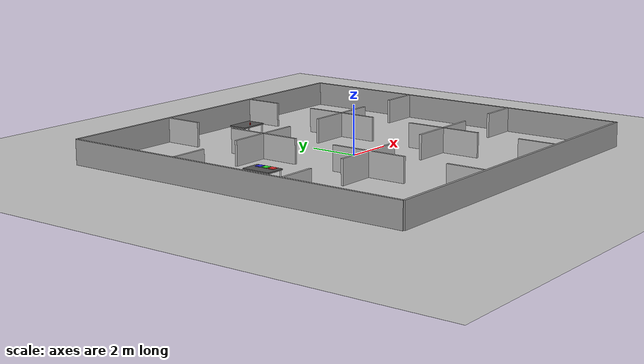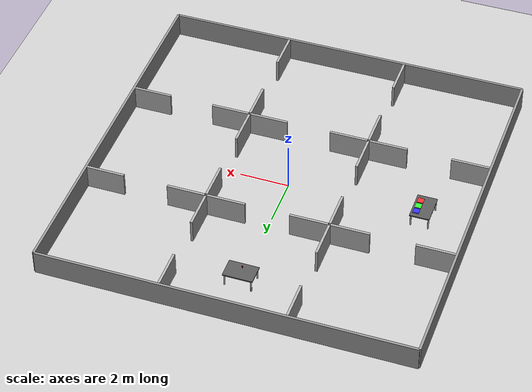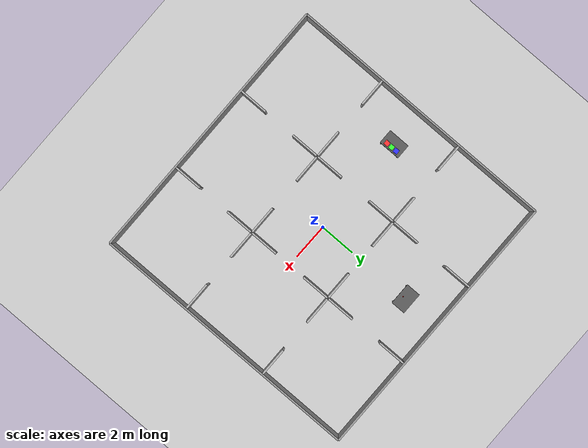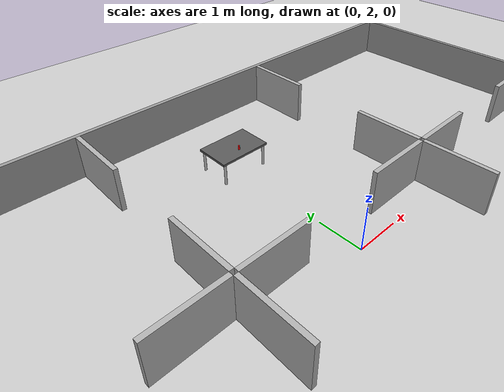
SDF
<sdf version='1.9'>
  <world name='empty_world'>
    <gravity>0 0 -9.8</gravity>
    <magnetic_field>6e-06 2.3e-05 -4.2e-05</magnetic_field>
    <atmosphere type='adiabatic'/>
    <physics type='ode'>
      <max_step_size>0.001</max_step_size>
      <real_time_factor>1</real_time_factor>
      <real_time_update_rate>1000</real_time_update_rate>
    </physics>
    <scene>
      <ambient>0.4 0.4 0.4 1</ambient>
      <background>0.7 0.7 0.7 1</background>
      <shadows>true</shadows>
    </scene>

    <model name='boundary_fence'>
      <static>true</static>
      <pose>0 0 0 0 0 0</pose>
      <link name='wall_north'>
        <pose>0 7.5 0.5 0 0 0</pose>
        <collision name='collision'><geometry><box><size>15.0 0.1 1.0</size></box></geometry></collision>
        <visual name='visual'>
          <geometry><box><size>15.0 0.1 1.0</size></box></geometry>
          <material>
            <ambient>0.5 0.5 0.5 1</ambient>
            <diffuse>0.6 0.6 0.6 1</diffuse>
            <specular>0.1 0.1 0.1 1</specular>
          </material>
        </visual>
      </link>
      <link name='wall_south'>
        <pose>0 -7.5 0.5 0 0 0</pose>
        <collision name='collision'><geometry><box><size>15.0 0.1 1.0</size></box></geometry></collision>
        <visual name='visual'>
          <geometry><box><size>15.0 0.1 1.0</size></box></geometry>
          <material>
            <ambient>0.5 0.5 0.5 1</ambient>
            <diffuse>0.6 0.6 0.6 1</diffuse>
            <specular>0.1 0.1 0.1 1</specular>
          </material>
        </visual>
      </link>
      <link name='wall_east'>
        <pose>7.5 0 0.5 0 0 0</pose>
        <collision name='collision'><geometry><box><size>0.1 15.0 1.0</size></box></geometry></collision>
        <visual name='visual'>
          <geometry><box><size>0.1 15.0 1.0</size></box></geometry>
          <material>
            <ambient>0.5 0.5 0.5 1</ambient>
            <diffuse>0.6 0.6 0.6 1</diffuse>
            <specular>0.1 0.1 0.1 1</specular>
          </material>
        </visual>
      </link>
      <link name='wall_west'>
        <pose>-7.5 0 0.5 0 0 0</pose>
        <collision name='collision'><geometry><box><size>0.1 15.0 1.0</size></box></geometry></collision>
        <visual name='visual'>
          <geometry><box><size>0.1 15.0 1.0</size></box></geometry>
          <material>
            <ambient>0.5 0.5 0.5 1</ambient>
            <diffuse>0.6 0.6 0.6 1</diffuse>
            <specular>0.1 0.1 0.1 1</specular>
          </material>
        </visual>
      </link>
    </model>

    <model name='internal_partitions'>
      <static>true</static>
      <pose>0 0 0 0 0 0</pose>
      <link name='partition_north'>
        <pose>0 2.5 0.5 0 0 0</pose>
        <collision name='col_nw_1'><pose>-6.675 0 0 0 0 0</pose><geometry><box><size>1.55 0.1 1.0</size></box></geometry></collision>
        <visual name='vis_nw_1'><pose>-6.675 0 0 0 0 0</pose><geometry><box><size>1.55 0.1 1.0</size></box></geometry><material><ambient>0.6 0.6 0.6 1</ambient><diffuse>0.7 0.7 0.7 1</diffuse></material></visual>
        <collision name='col_nw_2'><pose>-3.325 0 0 0 0 0</pose><geometry><box><size>1.55 0.1 1.0</size></box></geometry></collision>
        <visual name='vis_nw_2'><pose>-3.325 0 0 0 0 0</pose><geometry><box><size>1.55 0.1 1.0</size></box></geometry><material><ambient>0.6 0.6 0.6 1</ambient><diffuse>0.7 0.7 0.7 1</diffuse></material></visual>
        <collision name='col_nc_1'><pose>-1.675 0 0 0 0 0</pose><geometry><box><size>1.55 0.1 1.0</size></box></geometry></collision>
        <visual name='vis_nc_1'><pose>-1.675 0 0 0 0 0</pose><geometry><box><size>1.55 0.1 1.0</size></box></geometry><material><ambient>0.6 0.6 0.6 1</ambient><diffuse>0.7 0.7 0.7 1</diffuse></material></visual>
        <collision name='col_nc_2'><pose>1.675 0 0 0 0 0</pose><geometry><box><size>1.55 0.1 1.0</size></box></geometry></collision>
        <visual name='vis_nc_2'><pose>1.675 0 0 0 0 0</pose><geometry><box><size>1.55 0.1 1.0</size></box></geometry><material><ambient>0.6 0.6 0.6 1</ambient><diffuse>0.7 0.7 0.7 1</diffuse></material></visual>
        <collision name='col_ne_1'><pose>3.325 0 0 0 0 0</pose><geometry><box><size>1.55 0.1 1.0</size></box></geometry></collision>
        <visual name='vis_ne_1'><pose>3.325 0 0 0 0 0</pose><geometry><box><size>1.55 0.1 1.0</size></box></geometry><material><ambient>0.6 0.6 0.6 1</ambient><diffuse>0.7 0.7 0.7 1</diffuse></material></visual>
        <collision name='col_ne_2'><pose>6.675 0 0 0 0 0</pose><geometry><box><size>1.55 0.1 1.0</size></box></geometry></collision>
        <visual name='vis_ne_2'><pose>6.675 0 0 0 0 0</pose><geometry><box><size>1.55 0.1 1.0</size></box></geometry><material><ambient>0.6 0.6 0.6 1</ambient><diffuse>0.7 0.7 0.7 1</diffuse></material></visual>
      </link>
      <link name='partition_south'>
        <pose>0 -2.5 0.5 0 0 0</pose>
        <collision name='col_sw_1'><pose>-6.675 0 0 0 0 0</pose><geometry><box><size>1.55 0.1 1.0</size></box></geometry></collision>
        <visual name='vis_sw_1'><pose>-6.675 0 0 0 0 0</pose><geometry><box><size>1.55 0.1 1.0</size></box></geometry><material><ambient>0.6 0.6 0.6 1</ambient><diffuse>0.7 0.7 0.7 1</diffuse></material></visual>
        <collision name='col_sw_2'><pose>-3.325 0 0 0 0 0</pose><geometry><box><size>1.55 0.1 1.0</size></box></geometry></collision>
        <visual name='vis_sw_2'><pose>-3.325 0 0 0 0 0</pose><geometry><box><size>1.55 0.1 1.0</size></box></geometry><material><ambient>0.6 0.6 0.6 1</ambient><diffuse>0.7 0.7 0.7 1</diffuse></material></visual>
        <collision name='col_sc_1'><pose>-1.675 0 0 0 0 0</pose><geometry><box><size>1.55 0.1 1.0</size></box></geometry></collision>
        <visual name='vis_sc_1'><pose>-1.675 0 0 0 0 0</pose><geometry><box><size>1.55 0.1 1.0</size></box></geometry><material><ambient>0.6 0.6 0.6 1</ambient><diffuse>0.7 0.7 0.7 1</diffuse></material></visual>
        <collision name='col_sc_2'><pose>1.675 0 0 0 0 0</pose><geometry><box><size>1.55 0.1 1.0</size></box></geometry></collision>
        <visual name='vis_sc_2'><pose>1.675 0 0 0 0 0</pose><geometry><box><size>1.55 0.1 1.0</size></box></geometry><material><ambient>0.6 0.6 0.6 1</ambient><diffuse>0.7 0.7 0.7 1</diffuse></material></visual>
        <collision name='col_se_1'><pose>3.325 0 0 0 0 0</pose><geometry><box><size>1.55 0.1 1.0</size></box></geometry></collision>
        <visual name='vis_se_1'><pose>3.325 0 0 0 0 0</pose><geometry><box><size>1.55 0.1 1.0</size></box></geometry><material><ambient>0.6 0.6 0.6 1</ambient><diffuse>0.7 0.7 0.7 1</diffuse></material></visual>
        <collision name='col_se_2'><pose>6.675 0 0 0 0 0</pose><geometry><box><size>1.55 0.1 1.0</size></box></geometry></collision>
        <visual name='vis_se_2'><pose>6.675 0 0 0 0 0</pose><geometry><box><size>1.55 0.1 1.0</size></box></geometry><material><ambient>0.6 0.6 0.6 1</ambient><diffuse>0.7 0.7 0.7 1</diffuse></material></visual>
      </link>
      <link name='partition_west'>
        <pose>-2.5 0 0.5 0 0 0</pose>
        <collision name='col_wn_1'><pose>0 6.675 0 0 0 0</pose><geometry><box><size>0.1 1.55 1.0</size></box></geometry></collision>
        <visual name='vis_wn_1'><pose>0 6.675 0 0 0 0</pose><geometry><box><size>0.1 1.55 1.0</size></box></geometry><material><ambient>0.6 0.6 0.6 1</ambient><diffuse>0.7 0.7 0.7 1</diffuse></material></visual>
        <collision name='col_wn_2'><pose>0 3.325 0 0 0 0</pose><geometry><box><size>0.1 1.55 1.0</size></box></geometry></collision>
        <visual name='vis_wn_2'><pose>0 3.325 0 0 0 0</pose><geometry><box><size>0.1 1.55 1.0</size></box></geometry><material><ambient>0.6 0.6 0.6 1</ambient><diffuse>0.7 0.7 0.7 1</diffuse></material></visual>
        <collision name='col_wc_1'><pose>0 1.675 0 0 0 0</pose><geometry><box><size>0.1 1.55 1.0</size></box></geometry></collision>
        <visual name='vis_wc_1'><pose>0 1.675 0 0 0 0</pose><geometry><box><size>0.1 1.55 1.0</size></box></geometry><material><ambient>0.6 0.6 0.6 1</ambient><diffuse>0.7 0.7 0.7 1</diffuse></material></visual>
        <collision name='col_wc_2'><pose>0 -1.675 0 0 0 0</pose><geometry><box><size>0.1 1.55 1.0</size></box></geometry></collision>
        <visual name='vis_wc_2'><pose>0 -1.675 0 0 0 0</pose><geometry><box><size>0.1 1.55 1.0</size></box></geometry><material><ambient>0.6 0.6 0.6 1</ambient><diffuse>0.7 0.7 0.7 1</diffuse></material></visual>
        <collision name='col_ws_1'><pose>0 -3.325 0 0 0 0</pose><geometry><box><size>0.1 1.55 1.0</size></box></geometry></collision>
        <visual name='vis_ws_1'><pose>0 -3.325 0 0 0 0</pose><geometry><box><size>0.1 1.55 1.0</size></box></geometry><material><ambient>0.6 0.6 0.6 1</ambient><diffuse>0.7 0.7 0.7 1</diffuse></material></visual>
        <collision name='col_ws_2'><pose>0 -6.675 0 0 0 0</pose><geometry><box><size>0.1 1.55 1.0</size></box></geometry></collision>
        <visual name='vis_ws_2'><pose>0 -6.675 0 0 0 0</pose><geometry><box><size>0.1 1.55 1.0</size></box></geometry><material><ambient>0.6 0.6 0.6 1</ambient><diffuse>0.7 0.7 0.7 1</diffuse></material></visual>
      </link>
      <link name='partition_east'>
        <pose>2.5 0 0.5 0 0 0</pose>
        <collision name='col_en_1'><pose>0 6.675 0 0 0 0</pose><geometry><box><size>0.1 1.55 1.0</size></box></geometry></collision>
        <visual name='vis_en_1'><pose>0 6.675 0 0 0 0</pose><geometry><box><size>0.1 1.55 1.0</size></box></geometry><material><ambient>0.6 0.6 0.6 1</ambient><diffuse>0.7 0.7 0.7 1</diffuse></material></visual>
        <collision name='col_en_2'><pose>0 3.325 0 0 0 0</pose><geometry><box><size>0.1 1.55 1.0</size></box></geometry></collision>
        <visual name='vis_en_2'><pose>0 3.325 0 0 0 0</pose><geometry><box><size>0.1 1.55 1.0</size></box></geometry><material><ambient>0.6 0.6 0.6 1</ambient><diffuse>0.7 0.7 0.7 1</diffuse></material></visual>
        <collision name='col_ec_1'><pose>0 1.675 0 0 0 0</pose><geometry><box><size>0.1 1.55 1.0</size></box></geometry></collision>
        <visual name='vis_ec_1'><pose>0 1.675 0 0 0 0</pose><geometry><box><size>0.1 1.55 1.0</size></box></geometry><material><ambient>0.6 0.6 0.6 1</ambient><diffuse>0.7 0.7 0.7 1</diffuse></material></visual>
        <collision name='col_ec_2'><pose>0 -1.675 0 0 0 0</pose><geometry><box><size>0.1 1.55 1.0</size></box></geometry></collision>
        <visual name='vis_ec_2'><pose>0 -1.675 0 0 0 0</pose><geometry><box><size>0.1 1.55 1.0</size></box></geometry><material><ambient>0.6 0.6 0.6 1</ambient><diffuse>0.7 0.7 0.7 1</diffuse></material></visual>
        <collision name='col_es_1'><pose>0 -3.325 0 0 0 0</pose><geometry><box><size>0.1 1.55 1.0</size></box></geometry></collision>
        <visual name='vis_es_1'><pose>0 -3.325 0 0 0 0</pose><geometry><box><size>0.1 1.55 1.0</size></box></geometry><material><ambient>0.6 0.6 0.6 1</ambient><diffuse>0.7 0.7 0.7 1</diffuse></material></visual>
        <collision name='col_es_2'><pose>0 -6.675 0 0 0 0</pose><geometry><box><size>0.1 1.55 1.0</size></box></geometry></collision>
        <visual name='vis_es_2'><pose>0 -6.675 0 0 0 0</pose><geometry><box><size>0.1 1.55 1.0</size></box></geometry><material><ambient>0.6 0.6 0.6 1</ambient><diffuse>0.7 0.7 0.7 1</diffuse></material></visual>
      </link>
    </model>

    <!-- 分拣工作台（带红、绿、蓝三色托盘，放在西侧房间） -->
    <model name='sorting_workbench'>
      <static>true</static>
      <pose>-5.5 0 0 0 0 -1.57</pose>
      <link name='table_top'>
        <pose>0 0 0.525 0 0 0</pose>
        <collision name='col'><geometry><box><size>1.2 0.8 0.05</size></box></geometry></collision>
        <visual name='vis'>
          <geometry><box><size>1.2 0.8 0.05</size></box></geometry>
          <material><ambient>0.25 0.25 0.25 1</ambient><diffuse>0.35 0.35 0.35 1</diffuse></material>
        </visual>
      </link>
      <link name='tray_red'>
        <pose>0.3 0.2 0.555 0 0 0</pose>
        <collision name='col'><geometry><box><size>0.25 0.25 0.04</size></box></geometry></collision>
        <visual name='vis'>
          <geometry><box><size>0.25 0.25 0.04</size></box></geometry>
          <material><ambient>0.9 0.1 0.1 1</ambient><diffuse>1.0 0.2 0.2 1</diffuse></material>
        </visual>
      </link>
      <link name='tray_green'>
        <pose>0 0.2 0.555 0 0 0</pose>
        <collision name='col'><geometry><box><size>0.25 0.25 0.04</size></box></geometry></collision>
        <visual name='vis'>
          <geometry><box><size>0.25 0.25 0.04</size></box></geometry>
          <material><ambient>0.1 0.9 0.1 1</ambient><diffuse>0.2 1.0 0.2 1</diffuse></material>
        </visual>
      </link>
      <link name='tray_blue'>
        <pose>-0.3 0.2 0.555 0 0 0</pose>
        <collision name='col'><geometry><box><size>0.25 0.25 0.04</size></box></geometry></collision>
        <visual name='vis'>
          <geometry><box><size>0.25 0.25 0.04</size></box></geometry>
          <material><ambient>0.1 0.1 0.9 1</ambient><diffuse>0.2 0.2 1.0 1</diffuse></material>
        </visual>
      </link>
      <link name='leg1'><pose>0.53 0.35 0.25 0 0 0</pose><collision name='c'><geometry><cylinder><radius>0.03</radius><length>0.5</length></cylinder></geometry></collision><visual name='v'><geometry><cylinder><radius>0.03</radius><length>0.5</length></cylinder></geometry><material><ambient>0.7 0.7 0.7 1</ambient></material></visual></link>
      <link name='leg2'><pose>0.53 -0.35 0.25 0 0 0</pose><collision name='c'><geometry><cylinder><radius>0.03</radius><length>0.5</length></cylinder></geometry></collision><visual name='v'><geometry><cylinder><radius>0.03</radius><length>0.5</length></cylinder></geometry><material><ambient>0.7 0.7 0.7 1</ambient></material></visual></link>
      <link name='leg3'><pose>-0.53 0.35 0.25 0 0 0</pose><collision name='c'><geometry><cylinder><radius>0.03</radius><length>0.5</length></cylinder></geometry></collision><visual name='v'><geometry><cylinder><radius>0.03</radius><length>0.5</length></cylinder></geometry><material><ambient>0.7 0.7 0.7 1</ambient></material></visual></link>
      <link name='leg4'><pose>-0.53 -0.35 0.25 0 0 0</pose><collision name='c'><geometry><cylinder><radius>0.03</radius><length>0.5</length></cylinder></geometry></collision><visual name='v'><geometry><cylinder><radius>0.03</radius><length>0.5</length></cylinder></geometry><material><ambient>0.7 0.7 0.7 1</ambient></material></visual></link>
    </model>

    <!-- 物料工作台（放在北侧房间） -->
    <model name='material_workbench_north'>
      <static>true</static>
      <pose>0 5.5 0 0 0 0</pose>
      <link name='table_top'>
        <pose>0 0 0.525 0 0 0</pose>
        <collision name='col'><geometry><box><size>1.2 0.8 0.05</size></box></geometry></collision>
        <visual name='vis'>
          <geometry><box><size>1.2 0.8 0.05</size></box></geometry>
          <material><ambient>0.25 0.25 0.25 1</ambient><diffuse>0.35 0.35 0.35 1</diffuse></material>
        </visual>
      </link>
      <link name='leg1'><pose>0.53 0.35 0.25 0 0 0</pose><collision name='c'><geometry><cylinder><radius>0.03</radius><length>0.5</length></cylinder></geometry></collision><visual name='v'><geometry><cylinder><radius>0.03</radius><length>0.5</length></cylinder></geometry><material><ambient>0.7 0.7 0.7 1</ambient></material></visual></link>
      <link name='leg2'><pose>0.53 -0.35 0.25 0 0 0</pose><collision name='c'><geometry><cylinder><radius>0.03</radius><length>0.5</length></cylinder></geometry></collision><visual name='v'><geometry><cylinder><radius>0.03</radius><length>0.5</length></cylinder></geometry><material><ambient>0.7 0.7 0.7 1</ambient></material></visual></link>
      <link name='leg3'><pose>-0.53 0.35 0.25 0 0 0</pose><collision name='c'><geometry><cylinder><radius>0.03</radius><length>0.5</length></cylinder></geometry></collision><visual name='v'><geometry><cylinder><radius>0.03</radius><length>0.5</length></cylinder></geometry><material><ambient>0.7 0.7 0.7 1</ambient></material></visual></link>
      <link name='leg4'><pose>-0.53 -0.35 0.25 0 0 0</pose><collision name='c'><geometry><cylinder><radius>0.03</radius><length>0.5</length></cylinder></geometry></collision><visual name='v'><geometry><cylinder><radius>0.03</radius><length>0.5</length></cylinder></geometry><material><ambient>0.7 0.7 0.7 1</ambient></material></visual></link>
    </model>

    <!-- 圆柱体抓取物体（放在北侧物料桌上） -->
    <model name="tall_cylinder_object">
      <pose>0 5.32 0.585 0 0 0</pose>
      <link name="link">
        <inertial><mass>0.3</mass><inertia><ixx>0.001</ixx><iyy>0.001</iyy><izz>0.001</izz></inertia></inertial>
        <collision name="col">
          <geometry>
            <cylinder><radius>0.02</radius><length>0.12</length></cylinder>
          </geometry>
        </collision>
        <visual name="vis">
          <geometry>
            <cylinder><radius>0.02</radius><length>0.12</length></cylinder>
          </geometry>
          <material>
            <ambient>1 0 0 1</ambient>
            <diffuse>1 0 0 1</diffuse>
          </material>
        </visual>
      </link>
    </model>

    <model name='ground_plane'>
      <static>true</static>
      <link name='link'>
        <collision name='collision'><geometry><plane><normal>0 0 1</normal><size>1 1</size></plane></geometry></collision>
        <visual name='visual'>
          <geometry><plane><normal>0 0 1</normal><size>100 100</size></plane></geometry>
          <material><ambient>0.8 0.8 0.8 1</ambient><diffuse>0.8 0.8 0.8 1</diffuse></material>
        </visual>
      </link>
    </model>

    <light name='sun' type='directional'>
      <pose>0 0 10 0 -0 0</pose>
      <cast_shadows>true</cast_shadows>
      <direction>-0.5 0.1 -0.9</direction>
      <diffuse>0.8 0.8 0.8 1</diffuse>
      <specular>0.2 0.2 0.2 1</specular>
    </light>
  </world>
</sdf>
